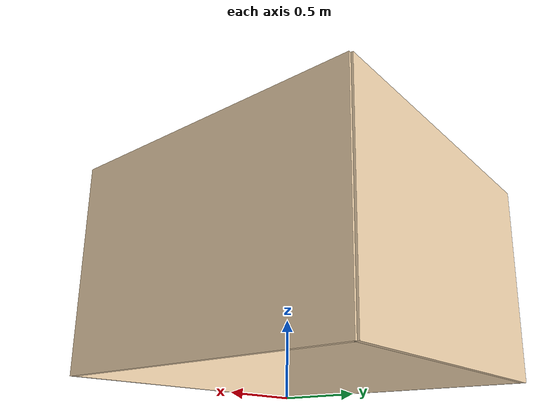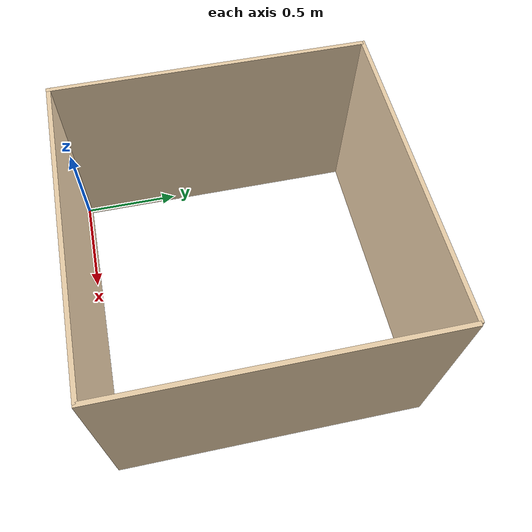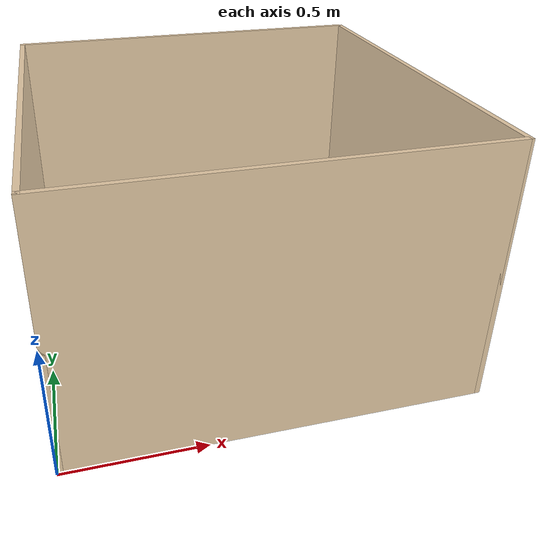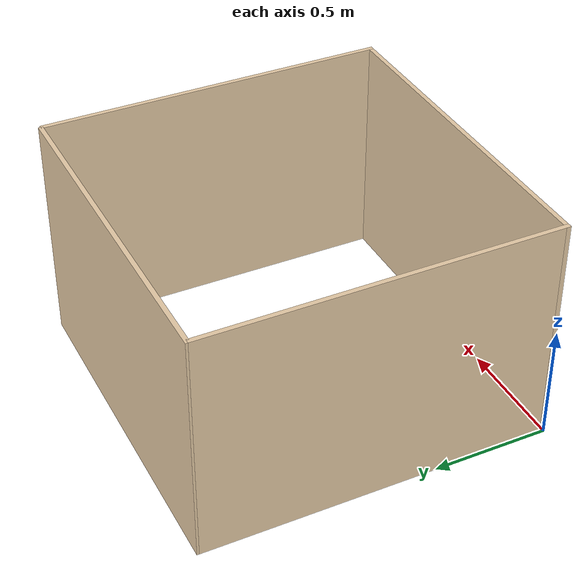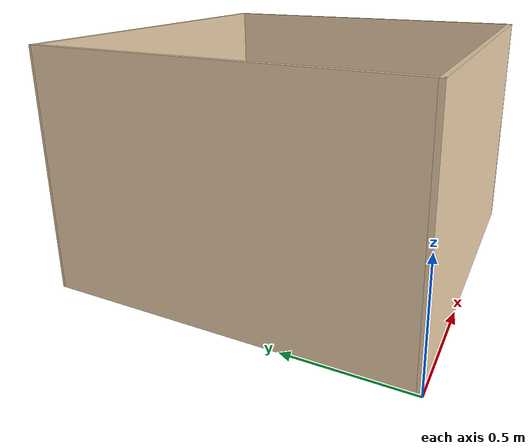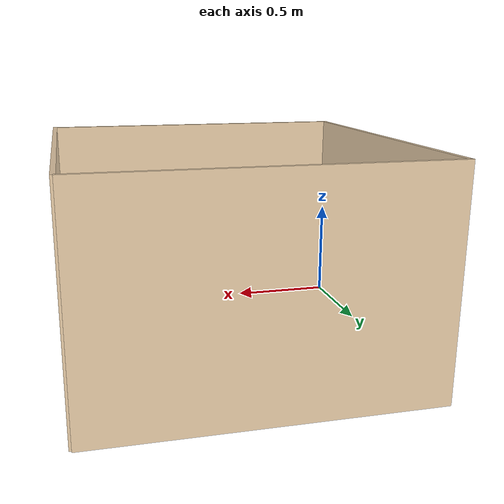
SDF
<?xml version="1.0"?>
<sdf version="1.7">

	<model name="miniOfficeWalls">

		<static>true</static>
		<link name="office">
			<collision name="left_wall_collision">
				<pose>0.01 0.75 0.5 1.5708 0 1.5708</pose>
				<geometry>
					<box>
						<size>1.5 1 0.02</size>
					</box>
				</geometry>
			</collision>
			<visual name="left_wall_visual">
				<pose>0.01 0.75 0.5 1.5708 0 1.5708</pose>
				<geometry>
					<box>
						<size>1.5 1 0.02</size>
						</box>
				</geometry>
				<material>
					<script>
						<uri>file://media/materials/scripts/gazebo.material</uri>
						<name>Gazebo/Grey</name>
					</script>

					<ambient>1 1 1 1</ambient>
					<diffuse>0.9098 0.80392 0.65882 1</diffuse>
					<specular>0.02 0.02 0.02 1</specular>
					<emissive>0 0 0 1</emissive>
				</material>
			</visual>

			<collision name="front_wall_collision">
				<pose>0.75 1.5 0.5 1.5708 0 0</pose>
				<geometry>
					<box>
						<size>1.5 1 0.02</size>
					</box>
				</geometry>
			</collision>
			<visual name="front_wall_visual">
				<pose>0.75 1.5 0.5 1.5708 0 0</pose>
				<geometry>
					<box>
						<size>1.5 1 0.02</size>
					</box>
				</geometry>
				<material>
					<script>
						<uri>file://media/materials/scripts/gazebo.material</uri>
						<name>Gazebo/Grey</name>
					</script>

					<ambient>1 1 1 1</ambient>
					<diffuse>0.9098 0.80392 0.65882 1</diffuse>
					<specular>0.02 0.02 0.02 1</specular>
					<emissive>0 0 0 1</emissive>
				</material>
			</visual>

			<collision name="right_wall_collision">
				<pose>1.5 0.75 0.5 1.5708 0 1.5708</pose>
				<geometry>
					<box>
						<size>1.5 1 0.02</size>
					</box>
				</geometry>
			</collision>
			<visual name="right_wall_visual">
				<pose>1.5 0.75 0.5 1.5708 0 1.5708</pose>
				<geometry>
					<box>
						<size>1.5 1 0.02</size>
					</box>
				</geometry>
				<material>
					<script>
						<uri>file://media/materials/scripts/gazebo.material</uri>
						<name>Gazebo/Grey</name>
					</script>

					<ambient>1 1 1 1</ambient>
					<diffuse>0.9098 0.80392 0.65882 1</diffuse>
					<specular>0.02 0.02 0.02 1</specular>
					<emissive>0 0 0 1</emissive>
				</material>
			</visual>

			<collision name="back_wall_collision">
				<pose>0.75 0.01 0.5 1.5708 0 0</pose>
				<geometry>
					<box>
						<size>1.5 1 0.02</size>
					</box>
				</geometry>
			</collision>
			<visual name="back_wall_visual">
				<pose>0.75 0.01 0.5 1.5708  0 0</pose>
				<geometry>
					<box>
						<size>1.5 1 0.02</size>
					</box>
				</geometry>
				<material>
					<script>
						<uri>file://media/materials/scripts/gazebo.material</uri>
						<name>Gazebo/Grey</name>
					</script>

					<ambient>1 1 1 1</ambient>
					<diffuse>0.9098 0.80392 0.65882 1</diffuse>
					<specular>0.02 0.02 0.02 1</specular>
					<emissive>0 0 0 1</emissive>
				</material>
			</visual>

		</link>
	</model>
</sdf>
